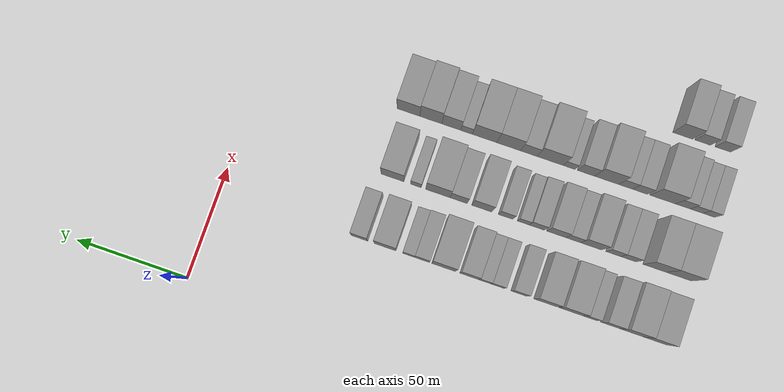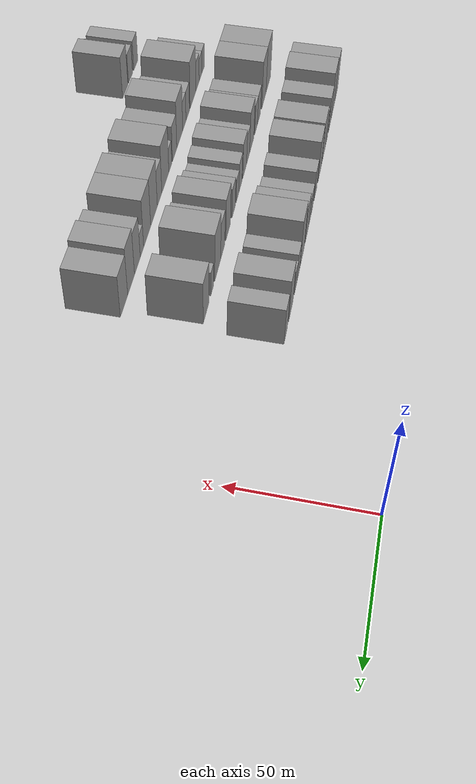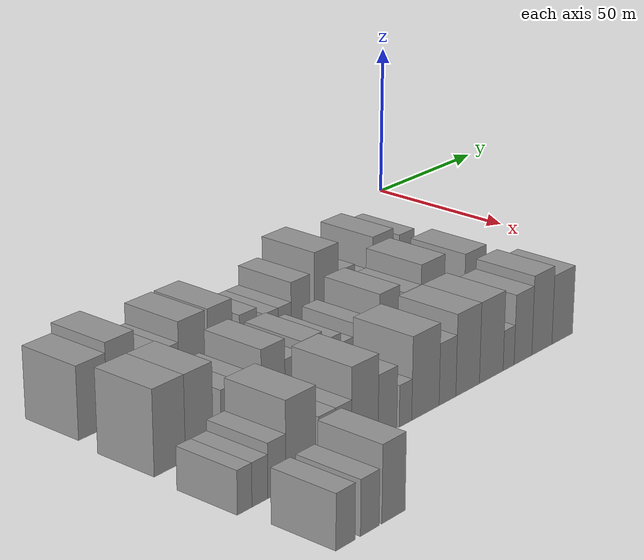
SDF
<sdf version="1.6">
 <world name="default">
  <model name="building_34">
   <static>1</static>
   <pose>50.0000 -194.4521 0 0.000000 0.000000 0.000000</pose>
   <link name="link">
    <pose>0 0 10.50 0 0 0</pose>
    <collision name="collision"><geometry><box><size>20.0000 10.4557 21.0000</size></box></geometry></collision>
    <visual name="visual">
     <cast_shadows>0</cast_shadows>
     <geometry><box><size>20.0000 10.4557 21.0000</size></box></geometry>
     <material>
      <script>
       <uri>model://grey_wall/materials/scripts</uri>
       <uri>model://grey_wall/materials/textures</uri>
       <name>vrc/grey_wall</name>
      </script>
     </material>
    </visual>
   </link>
  </model>
  <model name="building_35">
   <static>1</static>
   <pose>50.0000 -183.9868 0 0.000000 0.000000 0.000000</pose>
   <link name="link">
    <pose>0 0 12.00 0 0 0</pose>
    <collision name="collision"><geometry><box><size>20.0000 10.4749 24.0000</size></box></geometry></collision>
    <visual name="visual">
     <cast_shadows>0</cast_shadows>
     <geometry><box><size>20.0000 10.4749 24.0000</size></box></geometry>
     <material>
      <script>
       <uri>model://grey_wall/materials/scripts</uri>
       <uri>model://grey_wall/materials/textures</uri>
       <name>vrc/grey_wall</name>
      </script>
     </material>
    </visual>
   </link>
  </model>
  <model name="building_36">
   <static>1</static>
   <pose>50.0000 -174.6977 0 0.000000 0.000000 0.000000</pose>
   <link name="link">
    <pose>0 0 9.00 0 0 0</pose>
    <collision name="collision"><geometry><box><size>20.0000 8.1034 18.0000</size></box></geometry></collision>
    <visual name="visual">
     <cast_shadows>0</cast_shadows>
     <geometry><box><size>20.0000 8.1034 18.0000</size></box></geometry>
     <material>
      <script>
       <uri>model://grey_wall/materials/scripts</uri>
       <uri>model://grey_wall/materials/textures</uri>
       <name>vrc/grey_wall</name>
      </script>
     </material>
    </visual>
   </link>
  </model>
  <model name="building_37">
   <static>1</static>
   <pose>50.0000 -165.4682 0 0.000000 0.000000 0.000000</pose>
   <link name="link">
    <pose>0 0 7.50 0 0 0</pose>
    <collision name="collision"><geometry><box><size>20.0000 6.3556 15.0000</size></box></geometry></collision>
    <visual name="visual">
     <cast_shadows>0</cast_shadows>
     <geometry><box><size>20.0000 6.3556 15.0000</size></box></geometry>
     <material>
      <script>
       <uri>model://grey_wall/materials/scripts</uri>
       <uri>model://grey_wall/materials/textures</uri>
       <name>vrc/grey_wall</name>
      </script>
     </material>
    </visual>
   </link>
  </model>
  <model name="building_38">
   <static>1</static>
   <pose>50.0000 -157.0802 0 0.000000 0.000000 0.000000</pose>
   <link name="link">
    <pose>0 0 10.50 0 0 0</pose>
    <collision name="collision"><geometry><box><size>20.0000 10.4205 21.0000</size></box></geometry></collision>
    <visual name="visual">
     <cast_shadows>0</cast_shadows>
     <geometry><box><size>20.0000 10.4205 21.0000</size></box></geometry>
     <material>
      <script>
       <uri>model://grey_wall/materials/scripts</uri>
       <uri>model://grey_wall/materials/textures</uri>
       <name>vrc/grey_wall</name>
      </script>
     </material>
    </visual>
   </link>
  </model>
  <model name="building_39">
   <static>1</static>
   <pose>50.0000 -145.9283 0 0.000000 0.000000 0.000000</pose>
   <link name="link">
    <pose>0 0 10.50 0 0 0</pose>
    <collision name="collision"><geometry><box><size>20.0000 9.8833 21.0000</size></box></geometry></collision>
    <visual name="visual">
     <cast_shadows>0</cast_shadows>
     <geometry><box><size>20.0000 9.8833 21.0000</size></box></geometry>
     <material>
      <script>
       <uri>model://grey_wall/materials/scripts</uri>
       <uri>model://grey_wall/materials/textures</uri>
       <name>vrc/grey_wall</name>
      </script>
     </material>
    </visual>
   </link>
  </model>
  <model name="building_40">
   <static>1</static>
   <pose>50.0000 -134.4075 0 0.000000 0.000000 0.000000</pose>
   <link name="link">
    <pose>0 0 7.50 0 0 0</pose>
    <collision name="collision"><geometry><box><size>20.0000 7.1582 15.0000</size></box></geometry></collision>
    <visual name="visual">
     <cast_shadows>0</cast_shadows>
     <geometry><box><size>20.0000 7.1582 15.0000</size></box></geometry>
     <material>
      <script>
       <uri>model://grey_wall/materials/scripts</uri>
       <uri>model://grey_wall/materials/textures</uri>
       <name>vrc/grey_wall</name>
      </script>
     </material>
    </visual>
   </link>
  </model>
  <model name="building_41">
   <static>1</static>
   <pose>50.0000 -124.8479 0 0.000000 0.000000 0.000000</pose>
   <link name="link">
    <pose>0 0 6.00 0 0 0</pose>
    <collision name="collision"><geometry><box><size>20.0000 5.9610 12.0000</size></box></geometry></collision>
    <visual name="visual">
     <cast_shadows>0</cast_shadows>
     <geometry><box><size>20.0000 5.9610 12.0000</size></box></geometry>
     <material>
      <script>
       <uri>model://grey_wall/materials/scripts</uri>
       <uri>model://grey_wall/materials/textures</uri>
       <name>vrc/grey_wall</name>
      </script>
     </material>
    </visual>
   </link>
  </model>
  <model name="building_42">
   <static>1</static>
   <pose>50.0000 -119.0805 0 0.000000 0.000000 0.000000</pose>
   <link name="link">
    <pose>0 0 6.00 0 0 0</pose>
    <collision name="collision"><geometry><box><size>20.0000 5.5739 12.0000</size></box></geometry></collision>
    <visual name="visual">
     <cast_shadows>0</cast_shadows>
     <geometry><box><size>20.0000 5.5739 12.0000</size></box></geometry>
     <material>
      <script>
       <uri>model://grey_wall/materials/scripts</uri>
       <uri>model://grey_wall/materials/textures</uri>
       <name>vrc/grey_wall</name>
      </script>
     </material>
    </visual>
   </link>
  </model>
  <model name="building_43">
   <static>1</static>
   <pose>50.0000 -112.1648 0 0.000000 0.000000 0.000000</pose>
   <link name="link">
    <pose>0 0 9.00 0 0 0</pose>
    <collision name="collision"><geometry><box><size>20.0000 8.2574 18.0000</size></box></geometry></collision>
    <visual name="visual">
     <cast_shadows>0</cast_shadows>
     <geometry><box><size>20.0000 8.2574 18.0000</size></box></geometry>
     <material>
      <script>
       <uri>model://grey_wall/materials/scripts</uri>
       <uri>model://grey_wall/materials/textures</uri>
       <name>vrc/grey_wall</name>
      </script>
     </material>
    </visual>
   </link>
  </model>
  <model name="building_44">
   <static>1</static>
   <pose>50.0000 -100.7540 0 0.000000 0.000000 0.000000</pose>
   <link name="link">
    <pose>0 0 12.00 0 0 0</pose>
    <collision name="collision"><geometry><box><size>20.0000 10.5642 24.0000</size></box></geometry></collision>
    <visual name="visual">
     <cast_shadows>0</cast_shadows>
     <geometry><box><size>20.0000 10.5642 24.0000</size></box></geometry>
     <material>
      <script>
       <uri>model://grey_wall/materials/scripts</uri>
       <uri>model://grey_wall/materials/textures</uri>
       <name>vrc/grey_wall</name>
      </script>
     </material>
    </visual>
   </link>
  </model>
  <model name="building_45">
   <static>1</static>
   <pose>50.0000 -91.1865 0 0.000000 0.000000 0.000000</pose>
   <link name="link">
    <pose>0 0 7.50 0 0 0</pose>
    <collision name="collision"><geometry><box><size>20.0000 6.5709 15.0000</size></box></geometry></collision>
    <visual name="visual">
     <cast_shadows>0</cast_shadows>
     <geometry><box><size>20.0000 6.5709 15.0000</size></box></geometry>
     <material>
      <script>
       <uri>model://grey_wall/materials/scripts</uri>
       <uri>model://grey_wall/materials/textures</uri>
       <name>vrc/grey_wall</name>
      </script>
     </material>
    </visual>
   </link>
  </model>
  <model name="building_46">
   <static>1</static>
   <pose>50.0000 -85.2072 0 0.000000 0.000000 0.000000</pose>
   <link name="link">
    <pose>0 0 6.00 0 0 0</pose>
    <collision name="collision"><geometry><box><size>20.0000 5.3876 12.0000</size></box></geometry></collision>
    <visual name="visual">
     <cast_shadows>0</cast_shadows>
     <geometry><box><size>20.0000 5.3876 12.0000</size></box></geometry>
     <material>
      <script>
       <uri>model://grey_wall/materials/scripts</uri>
       <uri>model://grey_wall/materials/textures</uri>
       <name>vrc/grey_wall</name>
      </script>
     </material>
    </visual>
   </link>
  </model>
  <model name="building_47">
   <static>1</static>
   <pose>50.0000 -74.6740 0 0.000000 0.000000 0.000000</pose>
   <link name="link">
    <pose>0 0 10.50 0 0 0</pose>
    <collision name="collision"><geometry><box><size>20.0000 9.6788 21.0000</size></box></geometry></collision>
    <visual name="visual">
     <cast_shadows>0</cast_shadows>
     <geometry><box><size>20.0000 9.6788 21.0000</size></box></geometry>
     <material>
      <script>
       <uri>model://grey_wall/materials/scripts</uri>
       <uri>model://grey_wall/materials/textures</uri>
       <name>vrc/grey_wall</name>
      </script>
     </material>
    </visual>
   </link>
  </model>
  <model name="building_48">
   <static>1</static>
   <pose>50.0000 -63.1917 0 0.000000 0.000000 0.000000</pose>
   <link name="link">
    <pose>0 0 9.00 0 0 0</pose>
    <collision name="collision"><geometry><box><size>20.0000 7.2860 18.0000</size></box></geometry></collision>
    <visual name="visual">
     <cast_shadows>0</cast_shadows>
     <geometry><box><size>20.0000 7.2860 18.0000</size></box></geometry>
     <material>
      <script>
       <uri>model://grey_wall/materials/scripts</uri>
       <uri>model://grey_wall/materials/textures</uri>
       <name>vrc/grey_wall</name>
      </script>
     </material>
    </visual>
   </link>
  </model>
  <model name="building_141">
   <static>1</static>
   <pose>79.0000 -195.9877 0 0.000000 0.000000 0.000000</pose>
   <link name="link">
    <pose>0 0 12.00 0 0 0</pose>
    <collision name="collision"><geometry><box><size>20.0000 11.2566 24.0000</size></box></geometry></collision>
    <visual name="visual">
     <cast_shadows>0</cast_shadows>
     <geometry><box><size>20.0000 11.2566 24.0000</size></box></geometry>
     <material>
      <script>
       <uri>model://grey_wall/materials/scripts</uri>
       <uri>model://grey_wall/materials/textures</uri>
       <name>vrc/grey_wall</name>
      </script>
     </material>
    </visual>
   </link>
  </model>
  <model name="building_142">
   <static>1</static>
   <pose>79.0000 -185.2264 0 0.000000 0.000000 0.000000</pose>
   <link name="link">
    <pose>0 0 12.00 0 0 0</pose>
    <collision name="collision"><geometry><box><size>20.0000 10.2660 24.0000</size></box></geometry></collision>
    <visual name="visual">
     <cast_shadows>0</cast_shadows>
     <geometry><box><size>20.0000 10.2660 24.0000</size></box></geometry>
     <material>
      <script>
       <uri>model://grey_wall/materials/scripts</uri>
       <uri>model://grey_wall/materials/textures</uri>
       <name>vrc/grey_wall</name>
      </script>
     </material>
    </visual>
   </link>
  </model>
  <model name="building_143">
   <static>1</static>
   <pose>79.0000 -173.5516 0 0.000000 0.000000 0.000000</pose>
   <link name="link">
    <pose>0 0 7.50 0 0 0</pose>
    <collision name="collision"><geometry><box><size>20.0000 7.0835 15.0000</size></box></geometry></collision>
    <visual name="visual">
     <cast_shadows>0</cast_shadows>
     <geometry><box><size>20.0000 7.0835 15.0000</size></box></geometry>
     <material>
      <script>
       <uri>model://grey_wall/materials/scripts</uri>
       <uri>model://grey_wall/materials/textures</uri>
       <name>vrc/grey_wall</name>
      </script>
     </material>
    </visual>
   </link>
  </model>
  <model name="building_144">
   <static>1</static>
   <pose>79.0000 -166.8018 0 0.000000 0.000000 0.000000</pose>
   <link name="link">
    <pose>0 0 7.50 0 0 0</pose>
    <collision name="collision"><geometry><box><size>20.0000 6.4161 15.0000</size></box></geometry></collision>
    <visual name="visual">
     <cast_shadows>0</cast_shadows>
     <geometry><box><size>20.0000 6.4161 15.0000</size></box></geometry>
     <material>
      <script>
       <uri>model://grey_wall/materials/scripts</uri>
       <uri>model://grey_wall/materials/textures</uri>
       <name>vrc/grey_wall</name>
      </script>
     </material>
    </visual>
   </link>
  </model>
  <model name="building_145">
   <static>1</static>
   <pose>79.0000 -156.8905 0 0.000000 0.000000 0.000000</pose>
   <link name="link">
    <pose>0 0 10.50 0 0 0</pose>
    <collision name="collision"><geometry><box><size>20.0000 9.4064 21.0000</size></box></geometry></collision>
    <visual name="visual">
     <cast_shadows>0</cast_shadows>
     <geometry><box><size>20.0000 9.4064 21.0000</size></box></geometry>
     <material>
      <script>
       <uri>model://grey_wall/materials/scripts</uri>
       <uri>model://grey_wall/materials/textures</uri>
       <name>vrc/grey_wall</name>
      </script>
     </material>
    </visual>
   </link>
  </model>
  <model name="building_146">
   <static>1</static>
   <pose>79.0000 -148.9209 0 0.000000 0.000000 0.000000</pose>
   <link name="link">
    <pose>0 0 7.50 0 0 0</pose>
    <collision name="collision"><geometry><box><size>20.0000 6.5329 15.0000</size></box></geometry></collision>
    <visual name="visual">
     <cast_shadows>0</cast_shadows>
     <geometry><box><size>20.0000 6.5329 15.0000</size></box></geometry>
     <material>
      <script>
       <uri>model://grey_wall/materials/scripts</uri>
       <uri>model://grey_wall/materials/textures</uri>
       <name>vrc/grey_wall</name>
      </script>
     </material>
    </visual>
   </link>
  </model>
  <model name="building_147">
   <static>1</static>
   <pose>79.0000 -141.3865 0 0.000000 0.000000 0.000000</pose>
   <link name="link">
    <pose>0 0 9.00 0 0 0</pose>
    <collision name="collision"><geometry><box><size>20.0000 8.5359 18.0000</size></box></geometry></collision>
    <visual name="visual">
     <cast_shadows>0</cast_shadows>
     <geometry><box><size>20.0000 8.5359 18.0000</size></box></geometry>
     <material>
      <script>
       <uri>model://grey_wall/materials/scripts</uri>
       <uri>model://grey_wall/materials/textures</uri>
       <name>vrc/grey_wall</name>
      </script>
     </material>
    </visual>
   </link>
  </model>
  <model name="building_148">
   <static>1</static>
   <pose>79.0000 -132.6690 0 0.000000 0.000000 0.000000</pose>
   <link name="link">
    <pose>0 0 7.50 0 0 0</pose>
    <collision name="collision"><geometry><box><size>20.0000 6.8992 15.0000</size></box></geometry></collision>
    <visual name="visual">
     <cast_shadows>0</cast_shadows>
     <geometry><box><size>20.0000 6.8992 15.0000</size></box></geometry>
     <material>
      <script>
       <uri>model://grey_wall/materials/scripts</uri>
       <uri>model://grey_wall/materials/textures</uri>
       <name>vrc/grey_wall</name>
      </script>
     </material>
    </visual>
   </link>
  </model>
  <model name="building_149">
   <static>1</static>
   <pose>79.0000 -126.5856 0 0.000000 0.000000 0.000000</pose>
   <link name="link">
    <pose>0 0 6.00 0 0 0</pose>
    <collision name="collision"><geometry><box><size>20.0000 5.2676 12.0000</size></box></geometry></collision>
    <visual name="visual">
     <cast_shadows>0</cast_shadows>
     <geometry><box><size>20.0000 5.2676 12.0000</size></box></geometry>
     <material>
      <script>
       <uri>model://grey_wall/materials/scripts</uri>
       <uri>model://grey_wall/materials/textures</uri>
       <name>vrc/grey_wall</name>
      </script>
     </material>
    </visual>
   </link>
  </model>
  <model name="building_150">
   <static>1</static>
   <pose>79.0000 -118.7104 0 0.000000 0.000000 0.000000</pose>
   <link name="link">
    <pose>0 0 7.50 0 0 0</pose>
    <collision name="collision"><geometry><box><size>20.0000 6.4827 15.0000</size></box></geometry></collision>
    <visual name="visual">
     <cast_shadows>0</cast_shadows>
     <geometry><box><size>20.0000 6.4827 15.0000</size></box></geometry>
     <material>
      <script>
       <uri>model://grey_wall/materials/scripts</uri>
       <uri>model://grey_wall/materials/textures</uri>
       <name>vrc/grey_wall</name>
      </script>
     </material>
    </visual>
   </link>
  </model>
  <model name="building_151">
   <static>1</static>
   <pose>79.0000 -107.9693 0 0.000000 0.000000 0.000000</pose>
   <link name="link">
    <pose>0 0 10.50 0 0 0</pose>
    <collision name="collision"><geometry><box><size>20.0000 8.9994 21.0000</size></box></geometry></collision>
    <visual name="visual">
     <cast_shadows>0</cast_shadows>
     <geometry><box><size>20.0000 8.9994 21.0000</size></box></geometry>
     <material>
      <script>
       <uri>model://grey_wall/materials/scripts</uri>
       <uri>model://grey_wall/materials/textures</uri>
       <name>vrc/grey_wall</name>
      </script>
     </material>
    </visual>
   </link>
  </model>
  <model name="building_152">
   <static>1</static>
   <pose>79.0000 -97.6126 0 0.000000 0.000000 0.000000</pose>
   <link name="link">
    <pose>0 0 9.00 0 0 0</pose>
    <collision name="collision"><geometry><box><size>20.0000 7.7142 18.0000</size></box></geometry></collision>
    <visual name="visual">
     <cast_shadows>0</cast_shadows>
     <geometry><box><size>20.0000 7.7142 18.0000</size></box></geometry>
     <material>
      <script>
       <uri>model://grey_wall/materials/scripts</uri>
       <uri>model://grey_wall/materials/textures</uri>
       <name>vrc/grey_wall</name>
      </script>
     </material>
    </visual>
   </link>
  </model>
  <model name="building_153">
   <static>1</static>
   <pose>79.0000 -88.2612 0 0.000000 0.000000 0.000000</pose>
   <link name="link">
    <pose>0 0 12.00 0 0 0</pose>
    <collision name="collision"><geometry><box><size>20.0000 10.9885 24.0000</size></box></geometry></collision>
    <visual name="visual">
     <cast_shadows>0</cast_shadows>
     <geometry><box><size>20.0000 10.9885 24.0000</size></box></geometry>
     <material>
      <script>
       <uri>model://grey_wall/materials/scripts</uri>
       <uri>model://grey_wall/materials/textures</uri>
       <name>vrc/grey_wall</name>
      </script>
     </material>
    </visual>
   </link>
  </model>
  <model name="building_154">
   <static>1</static>
   <pose>79.0000 -78.3634 0 0.000000 0.000000 0.000000</pose>
   <link name="link">
    <pose>0 0 6.00 0 0 0</pose>
    <collision name="collision"><geometry><box><size>20.0000 4.8071 12.0000</size></box></geometry></collision>
    <visual name="visual">
     <cast_shadows>0</cast_shadows>
     <geometry><box><size>20.0000 4.8071 12.0000</size></box></geometry>
     <material>
      <script>
       <uri>model://grey_wall/materials/scripts</uri>
       <uri>model://grey_wall/materials/textures</uri>
       <name>vrc/grey_wall</name>
      </script>
     </material>
    </visual>
   </link>
  </model>
  <model name="building_155">
   <static>1</static>
   <pose>79.0000 -67.8437 0 0.000000 0.000000 0.000000</pose>
   <link name="link">
    <pose>0 0 10.50 0 0 0</pose>
    <collision name="collision"><geometry><box><size>20.0000 10.2322 21.0000</size></box></geometry></collision>
    <visual name="visual">
     <cast_shadows>0</cast_shadows>
     <geometry><box><size>20.0000 10.2322 21.0000</size></box></geometry>
     <material>
      <script>
       <uri>model://grey_wall/materials/scripts</uri>
       <uri>model://grey_wall/materials/textures</uri>
       <name>vrc/grey_wall</name>
      </script>
     </material>
    </visual>
   </link>
  </model>
  <model name="building_254">
   <static>1</static>
   <pose>108.0000 -200.2576 0 0.000000 0.000000 0.000000</pose>
   <link name="link">
    <pose>0 0 6.00 0 0 0</pose>
    <collision name="collision"><geometry><box><size>20.0000 5.2527 12.0000</size></box></geometry></collision>
    <visual name="visual">
     <cast_shadows>0</cast_shadows>
     <geometry><box><size>20.0000 5.2527 12.0000</size></box></geometry>
     <material>
      <script>
       <uri>model://grey_wall/materials/scripts</uri>
       <uri>model://grey_wall/materials/textures</uri>
       <name>vrc/grey_wall</name>
      </script>
     </material>
    </visual>
   </link>
  </model>
  <model name="building_255">
   <static>1</static>
   <pose>108.0000 -194.7560 0 0.000000 0.000000 0.000000</pose>
   <link name="link">
    <pose>0 0 6.00 0 0 0</pose>
    <collision name="collision"><geometry><box><size>20.0000 5.7504 12.0000</size></box></geometry></collision>
    <visual name="visual">
     <cast_shadows>0</cast_shadows>
     <geometry><box><size>20.0000 5.7504 12.0000</size></box></geometry>
     <material>
      <script>
       <uri>model://grey_wall/materials/scripts</uri>
       <uri>model://grey_wall/materials/textures</uri>
       <name>vrc/grey_wall</name>
      </script>
     </material>
    </visual>
   </link>
  </model>
  <model name="building_256">
   <static>1</static>
   <pose>108.0000 -188.5659 0 0.000000 0.000000 0.000000</pose>
   <link name="link">
    <pose>0 0 7.50 0 0 0</pose>
    <collision name="collision"><geometry><box><size>20.0000 6.6298 15.0000</size></box></geometry></collision>
    <visual name="visual">
     <cast_shadows>0</cast_shadows>
     <geometry><box><size>20.0000 6.6298 15.0000</size></box></geometry>
     <material>
      <script>
       <uri>model://grey_wall/materials/scripts</uri>
       <uri>model://grey_wall/materials/textures</uri>
       <name>vrc/grey_wall</name>
      </script>
     </material>
    </visual>
   </link>
  </model>
  <model name="building_257">
   <static>1</static>
   <pose>108.0000 -179.5536 0 0.000000 0.000000 0.000000</pose>
   <link name="link">
    <pose>0 0 12.00 0 0 0</pose>
    <collision name="collision"><geometry><box><size>20.0000 11.3948 24.0000</size></box></geometry></collision>
    <visual name="visual">
     <cast_shadows>0</cast_shadows>
     <geometry><box><size>20.0000 11.3948 24.0000</size></box></geometry>
     <material>
      <script>
       <uri>model://grey_wall/materials/scripts</uri>
       <uri>model://grey_wall/materials/textures</uri>
       <name>vrc/grey_wall</name>
      </script>
     </material>
    </visual>
   </link>
  </model>
  <model name="building_258">
   <static>1</static>
   <pose>108.0000 -169.4934 0 0.000000 0.000000 0.000000</pose>
   <link name="link">
    <pose>0 0 7.50 0 0 0</pose>
    <collision name="collision"><geometry><box><size>20.0000 6.7256 15.0000</size></box></geometry></collision>
    <visual name="visual">
     <cast_shadows>0</cast_shadows>
     <geometry><box><size>20.0000 6.7256 15.0000</size></box></geometry>
     <material>
      <script>
       <uri>model://grey_wall/materials/scripts</uri>
       <uri>model://grey_wall/materials/textures</uri>
       <name>vrc/grey_wall</name>
      </script>
     </material>
    </visual>
   </link>
  </model>
  <model name="building_259">
   <static>1</static>
   <pose>108.0000 -163.0175 0 0.000000 0.000000 0.000000</pose>
   <link name="link">
    <pose>0 0 7.50 0 0 0</pose>
    <collision name="collision"><geometry><box><size>20.0000 6.2262 15.0000</size></box></geometry></collision>
    <visual name="visual">
     <cast_shadows>0</cast_shadows>
     <geometry><box><size>20.0000 6.2262 15.0000</size></box></geometry>
     <material>
      <script>
       <uri>model://grey_wall/materials/scripts</uri>
       <uri>model://grey_wall/materials/textures</uri>
       <name>vrc/grey_wall</name>
      </script>
     </material>
    </visual>
   </link>
  </model>
  <model name="building_260">
   <static>1</static>
   <pose>108.0000 -154.5010 0 0.000000 0.000000 0.000000</pose>
   <link name="link">
    <pose>0 0 12.00 0 0 0</pose>
    <collision name="collision"><geometry><box><size>20.0000 10.8069 24.0000</size></box></geometry></collision>
    <visual name="visual">
     <cast_shadows>0</cast_shadows>
     <geometry><box><size>20.0000 10.8069 24.0000</size></box></geometry>
     <material>
      <script>
       <uri>model://grey_wall/materials/scripts</uri>
       <uri>model://grey_wall/materials/textures</uri>
       <name>vrc/grey_wall</name>
      </script>
     </material>
    </visual>
   </link>
  </model>
  <model name="building_261">
   <static>1</static>
   <pose>108.0000 -145.2001 0 0.000000 0.000000 0.000000</pose>
   <link name="link">
    <pose>0 0 9.00 0 0 0</pose>
    <collision name="collision"><geometry><box><size>20.0000 7.7949 18.0000</size></box></geometry></collision>
    <visual name="visual">
     <cast_shadows>0</cast_shadows>
     <geometry><box><size>20.0000 7.7949 18.0000</size></box></geometry>
     <material>
      <script>
       <uri>model://grey_wall/materials/scripts</uri>
       <uri>model://grey_wall/materials/textures</uri>
       <name>vrc/grey_wall</name>
      </script>
     </material>
    </visual>
   </link>
  </model>
  <model name="building_262">
   <static>1</static>
   <pose>108.0000 -137.6461 0 0.000000 0.000000 0.000000</pose>
   <link name="link">
    <pose>0 0 6.00 0 0 0</pose>
    <collision name="collision"><geometry><box><size>20.0000 5.3130 12.0000</size></box></geometry></collision>
    <visual name="visual">
     <cast_shadows>0</cast_shadows>
     <geometry><box><size>20.0000 5.3130 12.0000</size></box></geometry>
     <material>
      <script>
       <uri>model://grey_wall/materials/scripts</uri>
       <uri>model://grey_wall/materials/textures</uri>
       <name>vrc/grey_wall</name>
      </script>
     </material>
    </visual>
   </link>
  </model>
  <model name="building_263">
   <static>1</static>
   <pose>108.0000 -129.0631 0 0.000000 0.000000 0.000000</pose>
   <link name="link">
    <pose>0 0 12.00 0 0 0</pose>
    <collision name="collision"><geometry><box><size>20.0000 11.8531 24.0000</size></box></geometry></collision>
    <visual name="visual">
     <cast_shadows>0</cast_shadows>
     <geometry><box><size>20.0000 11.8531 24.0000</size></box></geometry>
     <material>
      <script>
       <uri>model://grey_wall/materials/scripts</uri>
       <uri>model://grey_wall/materials/textures</uri>
       <name>vrc/grey_wall</name>
      </script>
     </material>
    </visual>
   </link>
  </model>
  <model name="building_264">
   <static>1</static>
   <pose>108.0000 -119.4119 0 0.000000 0.000000 0.000000</pose>
   <link name="link">
    <pose>0 0 9.00 0 0 0</pose>
    <collision name="collision"><geometry><box><size>20.0000 7.4494 18.0000</size></box></geometry></collision>
    <visual name="visual">
     <cast_shadows>0</cast_shadows>
     <geometry><box><size>20.0000 7.4494 18.0000</size></box></geometry>
     <material>
      <script>
       <uri>model://grey_wall/materials/scripts</uri>
       <uri>model://grey_wall/materials/textures</uri>
       <name>vrc/grey_wall</name>
      </script>
     </material>
    </visual>
   </link>
  </model>
  <model name="building_265">
   <static>1</static>
   <pose>108.0000 -110.3323 0 0.000000 0.000000 0.000000</pose>
   <link name="link">
    <pose>0 0 12.00 0 0 0</pose>
    <collision name="collision"><geometry><box><size>20.0000 10.7097 24.0000</size></box></geometry></collision>
    <visual name="visual">
     <cast_shadows>0</cast_shadows>
     <geometry><box><size>20.0000 10.7097 24.0000</size></box></geometry>
     <material>
      <script>
       <uri>model://grey_wall/materials/scripts</uri>
       <uri>model://grey_wall/materials/textures</uri>
       <name>vrc/grey_wall</name>
      </script>
     </material>
    </visual>
   </link>
  </model>
  <model name="building_266">
   <static>1</static>
   <pose>108.0000 -99.4564 0 0.000000 0.000000 0.000000</pose>
   <link name="link">
    <pose>0 0 12.00 0 0 0</pose>
    <collision name="collision"><geometry><box><size>20.0000 11.0423 24.0000</size></box></geometry></collision>
    <visual name="visual">
     <cast_shadows>0</cast_shadows>
     <geometry><box><size>20.0000 11.0423 24.0000</size></box></geometry>
     <material>
      <script>
       <uri>model://grey_wall/materials/scripts</uri>
       <uri>model://grey_wall/materials/textures</uri>
       <name>vrc/grey_wall</name>
      </script>
     </material>
    </visual>
   </link>
  </model>
  <model name="building_267">
   <static>1</static>
   <pose>108.0000 -91.3241 0 0.000000 0.000000 0.000000</pose>
   <link name="link">
    <pose>0 0 6.00 0 0 0</pose>
    <collision name="collision"><geometry><box><size>20.0000 5.2223 12.0000</size></box></geometry></collision>
    <visual name="visual">
     <cast_shadows>0</cast_shadows>
     <geometry><box><size>20.0000 5.2223 12.0000</size></box></geometry>
     <material>
      <script>
       <uri>model://grey_wall/materials/scripts</uri>
       <uri>model://grey_wall/materials/textures</uri>
       <name>vrc/grey_wall</name>
      </script>
     </material>
    </visual>
   </link>
  </model>
  <model name="building_268">
   <static>1</static>
   <pose>108.0000 -84.4315 0 0.000000 0.000000 0.000000</pose>
   <link name="link">
    <pose>0 0 10.50 0 0 0</pose>
    <collision name="collision"><geometry><box><size>20.0000 8.5628 21.0000</size></box></geometry></collision>
    <visual name="visual">
     <cast_shadows>0</cast_shadows>
     <geometry><box><size>20.0000 8.5628 21.0000</size></box></geometry>
     <material>
      <script>
       <uri>model://grey_wall/materials/scripts</uri>
       <uri>model://grey_wall/materials/textures</uri>
       <name>vrc/grey_wall</name>
      </script>
     </material>
    </visual>
   </link>
  </model>
  <model name="building_269">
   <static>1</static>
   <pose>108.0000 -75.1806 0 0.000000 0.000000 0.000000</pose>
   <link name="link">
    <pose>0 0 12.00 0 0 0</pose>
    <collision name="collision"><geometry><box><size>20.0000 9.9392 24.0000</size></box></geometry></collision>
    <visual name="visual">
     <cast_shadows>0</cast_shadows>
     <geometry><box><size>20.0000 9.9392 24.0000</size></box></geometry>
     <material>
      <script>
       <uri>model://grey_wall/materials/scripts</uri>
       <uri>model://grey_wall/materials/textures</uri>
       <name>vrc/grey_wall</name>
      </script>
     </material>
    </visual>
   </link>
  </model>
  <model name="building_270">
   <static>1</static>
   <pose>108.0000 -64.9922 0 0.000000 0.000000 0.000000</pose>
   <link name="link">
    <pose>0 0 10.50 0 0 0</pose>
    <collision name="collision"><geometry><box><size>20.0000 10.4375 21.0000</size></box></geometry></collision>
    <visual name="visual">
     <cast_shadows>0</cast_shadows>
     <geometry><box><size>20.0000 10.4375 21.0000</size></box></geometry>
     <material>
      <script>
       <uri>model://grey_wall/materials/scripts</uri>
       <uri>model://grey_wall/materials/textures</uri>
       <name>vrc/grey_wall</name>
      </script>
     </material>
    </visual>
   </link>
  </model>
  <model name="building_366">
   <static>1</static>
   <pose>137.0000 -197.3915 0 0.000000 0.000000 0.000000</pose>
   <link name="link">
    <pose>0 0 7.50 0 0 0</pose>
    <collision name="collision"><geometry><box><size>20.0000 7.0199 15.0000</size></box></geometry></collision>
    <visual name="visual">
     <cast_shadows>0</cast_shadows>
     <geometry><box><size>20.0000 7.0199 15.0000</size></box></geometry>
     <material>
      <script>
       <uri>model://grey_wall/materials/scripts</uri>
       <uri>model://grey_wall/materials/textures</uri>
       <name>vrc/grey_wall</name>
      </script>
     </material>
    </visual>
   </link>
  </model>
  <model name="building_367">
   <static>1</static>
   <pose>137.0000 -188.3687 0 0.000000 0.000000 0.000000</pose>
   <link name="link">
    <pose>0 0 7.50 0 0 0</pose>
    <collision name="collision"><geometry><box><size>20.0000 7.0257 15.0000</size></box></geometry></collision>
    <visual name="visual">
     <cast_shadows>0</cast_shadows>
     <geometry><box><size>20.0000 7.0257 15.0000</size></box></geometry>
     <material>
      <script>
       <uri>model://grey_wall/materials/scripts</uri>
       <uri>model://grey_wall/materials/textures</uri>
       <name>vrc/grey_wall</name>
      </script>
     </material>
    </visual>
   </link>
  </model>
  <model name="building_368">
   <static>1</static>
   <pose>137.0000 -179.3715 0 0.000000 0.000000 0.000000</pose>
   <link name="link">
    <pose>0 0 10.50 0 0 0</pose>
    <collision name="collision"><geometry><box><size>20.0000 8.9686 21.0000</size></box></geometry></collision>
    <visual name="visual">
     <cast_shadows>0</cast_shadows>
     <geometry><box><size>20.0000 8.9686 21.0000</size></box></geometry>
     <material>
      <script>
       <uri>model://grey_wall/materials/scripts</uri>
       <uri>model://grey_wall/materials/textures</uri>
       <name>vrc/grey_wall</name>
      </script>
     </material>
    </visual>
   </link>
  </model>
 </world>
</sdf>
